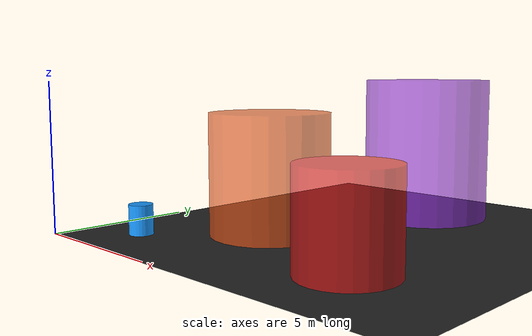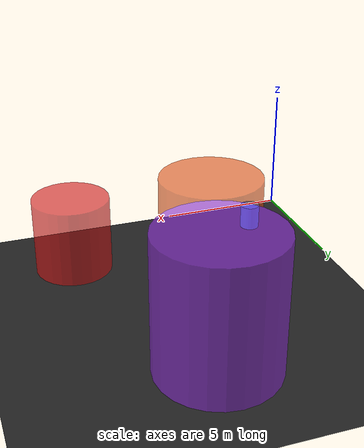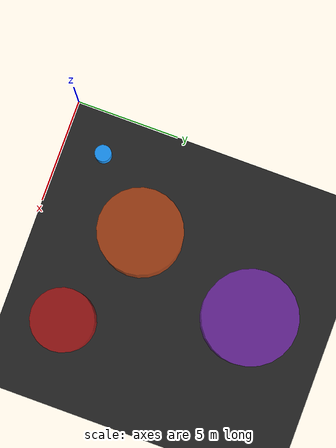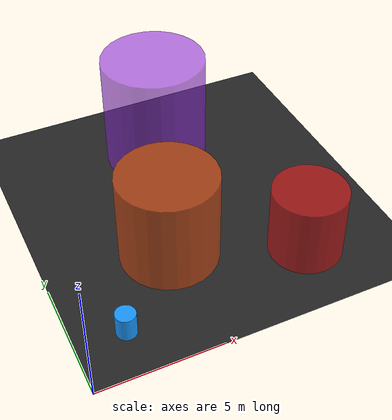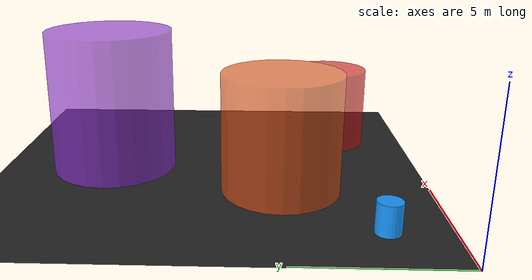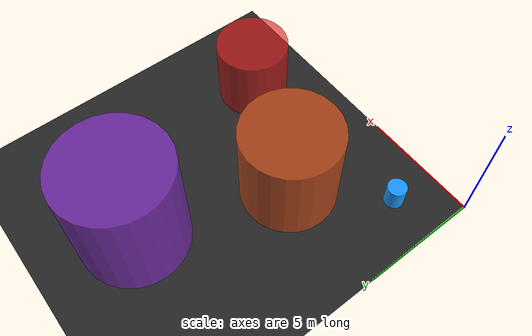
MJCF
<mujoco model="factory_floor">
  <compiler coordinate="local"/>
  <option gravity="0 0 -9.81"/>

  <asset>
    <!-- Grid Floor Material -->
    <texture name="grid" type="2d" builtin="checker" rgb1=".1 .1 .1" rgb2=".2 .2 .2" width="512" height="512"/>
    <material name="grid_mat" texture="grid" texrepeat="1 1" texuniform="true"/>
  </asset>

  <worldbody>
    <!-- Lighting -->
    <light pos="7.5 7.5 10" dir="0 0 -1" directional="true"/>

    <!-- 15m x 15m Floor Plane centered at (7.5, 7.5) -->
    <geom name="floor" type="plane" size="7.5 7.5 0.1" pos="7.5 7.5 0" material="grid_mat"/>

    <!-- Cylindrical Autonomous Mobile Robot (AMR) with slide joints for 3D navigation -->
    <body name="robot" pos="2.0 2.0 0.5">
      <joint name="robot_x" type="slide" axis="1 0 0" damping="10.0"/>
      <joint name="robot_y" type="slide" axis="0 1 0" damping="10.0"/>
      <joint name="robot_z" type="slide" axis="0 0 1" damping="10.0"/>
      <geom name="amr" type="cylinder" size="0.4 0.5" rgba="0.1 0.6 1.0 1.0"/>
    </body>

    <!-- Obstacle 1: 3D Industrial Robotic Press at (5, 5, 2) with radius 2.0 -->
    <body name="press_obstacle" pos="5.0 5.0 2.0">
      <geom name="press" type="cylinder" size="2.0 2.0" rgba="0.95 0.35 0.1 0.65"/>
    </body>

    <!-- Obstacle 2: High Voltage Cabinet at (10, 3, 1.5) with radius 1.5 -->
    <body name="cabinet_obstacle" pos="10.0 3.0 1.5">
      <geom name="cabinet" type="cylinder" size="1.5 1.5" rgba="0.9 0.1 0.1 0.65"/>
    </body>

    <!-- Obstacle 3: Automated Gantry/Conveyor at (7, 11, 2.5) with radius 2.2 -->
    <body name="conveyor_obstacle" pos="7.0 11.0 2.5">
      <geom name="conveyor" type="cylinder" size="2.2 2.5" rgba="0.6 0.2 0.9 0.65"/>
    </body>
  </worldbody>
</mujoco>
